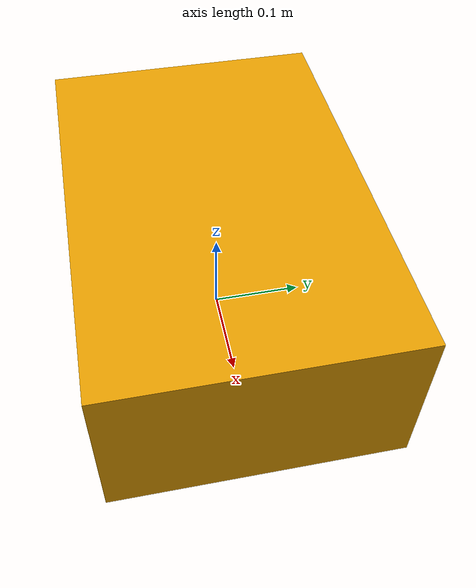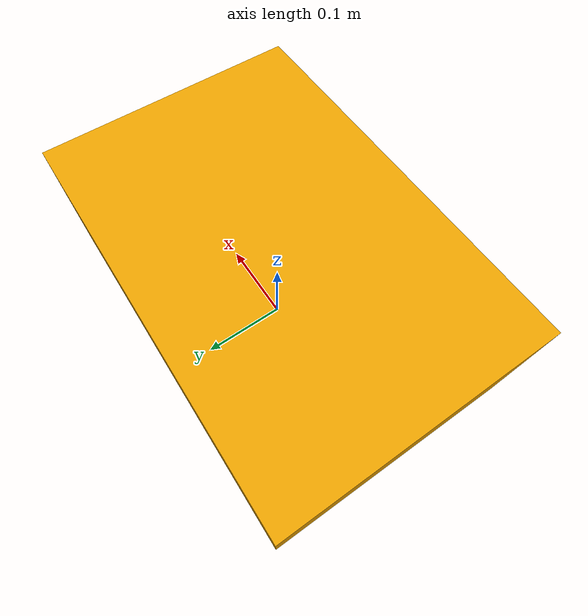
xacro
<?xml version="1.0"?>
<robot xmlns:xacro="http://ros.org/wiki/xacro" name="inspection_robot">
  <xacro:property name="wheel_radius" value="0.065"/>
  <xacro:property name="wheel_separation" value="0.320"/>
  <xacro:property name="body_length" value="0.460"/>
  <xacro:property name="body_width" value="0.310"/>
  <xacro:property name="body_height" value="0.180"/>
  <xacro:property name="camera_height" value="0.240"/>
  <link name="base_link">
    <inertial>
      <origin xyz="0 0 0.0900" rpy="0 0 0"/>
      <mass value="11.0000"/>
      <inertia ixx="0.12" ixy="0.0" ixz="0.0" iyy="0.16" iyz="0.0" izz="0.18"/>
    </inertial>
    <visual>
      <origin xyz="0 0 ${body_height/2.0}" rpy="0 0 0"/>
      <geometry><box size="${body_length} ${body_width} ${body_height}"/></geometry>
    </visual>
    <collision>
      <origin xyz="0 0 ${body_height/2.0}" rpy="0 0 0"/>
      <geometry><box size="${body_length} ${body_width} ${body_height}"/></geometry>
    </collision>
  </link>
  <link name="left_wheel_link"/>
  <link name="right_wheel_link"/>
  <joint name="left_wheel_joint" type="continuous">
    <parent link="base_link"/>
    <child link="left_wheel_link"/>
    <origin xyz="0 0.1600 0.0650" rpy="0 0 0"/>
    <axis xyz="0 1 0"/>
  </joint>
  <joint name="right_wheel_joint" type="continuous">
    <parent link="base_link"/>
    <child link="right_wheel_link"/>
    <origin xyz="0 -0.1600 0.0650" rpy="0 0 0"/>
    <axis xyz="0 1 0"/>
  </joint>
  <link name="camera_link"/>
  <joint name="camera_mount_joint" type="fixed">
    <parent link="base_link"/>
    <child link="camera_link"/>
    <origin xyz="0 0 ${camera_height}" rpy="0 0 0"/>
  </joint>
  <link name="imu_link"/>
  <joint name="imu_mount_joint" type="fixed">
    <parent link="base_link"/>
    <child link="imu_link"/>
    <origin xyz="0 0 0.1440" rpy="0 0 0"/>
  </joint>
  <link name="battery_link"/>
  <joint name="battery_mount_joint" type="fixed">
    <parent link="base_link"/>
    <child link="battery_link"/>
    <origin xyz="-0.08 0 0.0900" rpy="0 0 0"/>
  </joint>
</robot>
